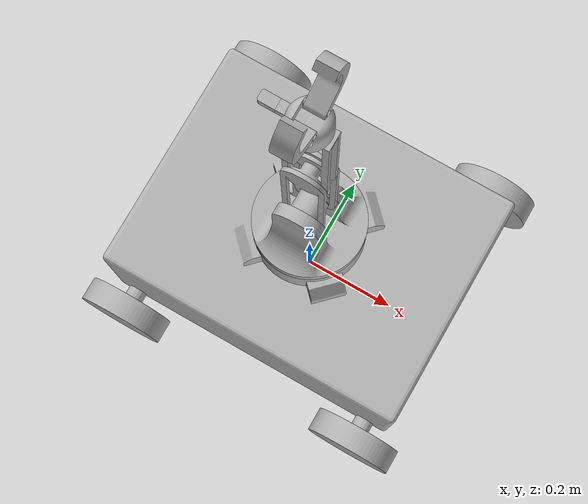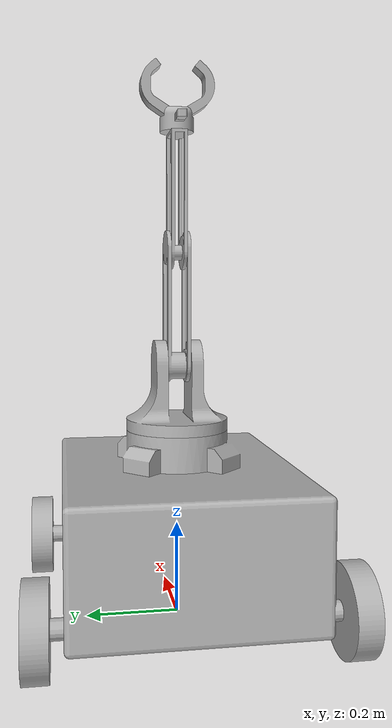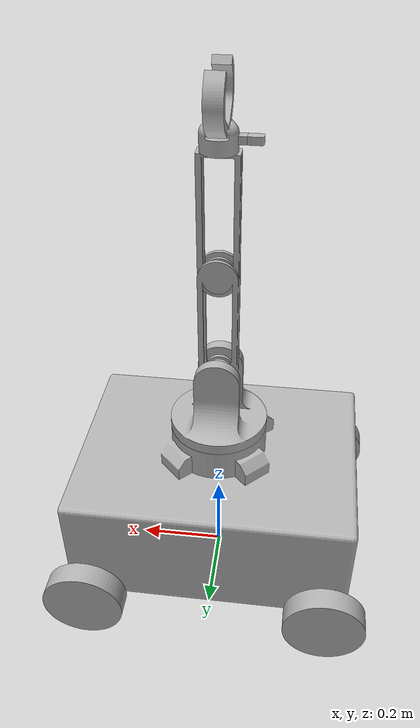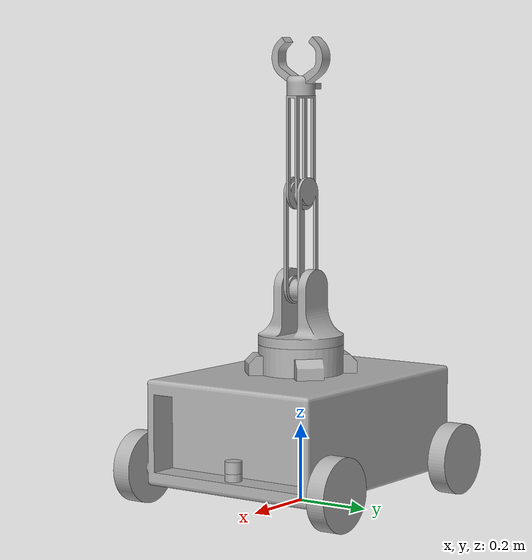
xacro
<?xml version="1.0" ?>
<robot name="visical" xmlns:xacro="http://www.ros.org/wiki/xacro">

<xacro:include filename="$(find visical_description)/urdf/materials.xacro" />
<xacro:include filename="$(find visical_description)/urdf/visical.trans" />
<xacro:include filename="$(find visical_description)/urdf/visical.gazebo" />
<link name="base_link">
  <inertial>
    <origin xyz="-0.02277255286612654 -1.0929189061035456e-16 0.20640782949766417" rpy="0 0 0"/>
    <mass value="90.32709779099359"/>
    <inertia ixx="2.506687" iyy="3.358099" izz="4.557173" ixy="-0.0" iyz="-0.0" ixz="-0.012339"/>
  </inertial>
  <visual>
    <origin xyz="0 0 0" rpy="0 0 0"/>
    <geometry>
      <mesh filename="package://visical_description/meshes/base_link.stl" scale="0.001 0.001 0.001"/>
    </geometry>
    <material name="silver"/>
  </visual>
  <collision>
    <origin xyz="0 0 0" rpy="0 0 0"/>
    <geometry>
      <mesh filename="package://visical_description/meshes/base_link.stl" scale="0.001 0.001 0.001"/>
    </geometry>
  </collision>
</link>

<link name="right_back_wheel_1">
  <inertial>
    <origin xyz="1.1102230246251565e-16 0.024999999999999967 1.3877787807814457e-17" rpy="0 0 0"/>
    <mass value="1.2499317246159112"/>
    <inertia ixx="0.002934" iyy="0.005347" izz="0.002934" ixy="0.0" iyz="-0.0" ixz="0.0"/>
  </inertial>
  <visual>
    <origin xyz="0.275 -0.275 -0.1" rpy="0 0 0"/>
    <geometry>
      <mesh filename="package://visical_description/meshes/right_back_wheel_1.stl" scale="0.001 0.001 0.001"/>
    </geometry>
    <material name="silver"/>
  </visual>
  <collision>
    <origin xyz="0.275 -0.275 -0.1" rpy="0 0 0"/>
    <geometry>
      <mesh filename="package://visical_description/meshes/right_back_wheel_1.stl" scale="0.001 0.001 0.001"/>
    </geometry>
  </collision>
</link>

<link name="right_front_wheel_1">
  <inertial>
    <origin xyz="0.0 0.024999999999999967 1.3877787807814457e-17" rpy="0 0 0"/>
    <mass value="1.2499317246159112"/>
    <inertia ixx="0.002934" iyy="0.005347" izz="0.002934" ixy="0.0" iyz="-0.0" ixz="0.0"/>
  </inertial>
  <visual>
    <origin xyz="-0.275 -0.275 -0.1" rpy="0 0 0"/>
    <geometry>
      <mesh filename="package://visical_description/meshes/right_front_wheel_1.stl" scale="0.001 0.001 0.001"/>
    </geometry>
    <material name="silver"/>
  </visual>
  <collision>
    <origin xyz="-0.275 -0.275 -0.1" rpy="0 0 0"/>
    <geometry>
      <mesh filename="package://visical_description/meshes/right_front_wheel_1.stl" scale="0.001 0.001 0.001"/>
    </geometry>
  </collision>
</link>

<link name="left_front_wheel_1">
  <inertial>
    <origin xyz="0.0 -0.024999999999999967 1.3877787807814457e-17" rpy="0 0 0"/>
    <mass value="1.2499317246159112"/>
    <inertia ixx="0.002934" iyy="0.005347" izz="0.002934" ixy="0.0" iyz="0.0" ixz="0.0"/>
  </inertial>
  <visual>
    <origin xyz="-0.275 0.275 -0.1" rpy="0 0 0"/>
    <geometry>
      <mesh filename="package://visical_description/meshes/left_front_wheel_1.stl" scale="0.001 0.001 0.001"/>
    </geometry>
    <material name="silver"/>
  </visual>
  <collision>
    <origin xyz="-0.275 0.275 -0.1" rpy="0 0 0"/>
    <geometry>
      <mesh filename="package://visical_description/meshes/left_front_wheel_1.stl" scale="0.001 0.001 0.001"/>
    </geometry>
  </collision>
</link>

<link name="left_back_wheel_1">
  <inertial>
    <origin xyz="1.1102230246251565e-16 -0.024999999999999967 1.3877787807814457e-17" rpy="0 0 0"/>
    <mass value="1.2499317246159112"/>
    <inertia ixx="0.002934" iyy="0.005347" izz="0.002934" ixy="-0.0" iyz="0.0" ixz="0.0"/>
  </inertial>
  <visual>
    <origin xyz="0.275 0.275 -0.1" rpy="0 0 0"/>
    <geometry>
      <mesh filename="package://visical_description/meshes/left_back_wheel_1.stl" scale="0.001 0.001 0.001"/>
    </geometry>
    <material name="silver"/>
  </visual>
  <collision>
    <origin xyz="0.275 0.275 -0.1" rpy="0 0 0"/>
    <geometry>
      <mesh filename="package://visical_description/meshes/left_back_wheel_1.stl" scale="0.001 0.001 0.001"/>
    </geometry>
  </collision>
</link>

<link name="base_1">
  <inertial>
    <origin xyz="-3.6439649877433185e-17 -1.8219824938716593e-17 0.052780065045489155" rpy="0 0 0"/>
    <mass value="2.1165173367405865"/>
    <inertia ixx="0.011329" iyy="0.009953" izz="0.009435" ixy="-0.0" iyz="0.0" ixz="-0.0"/>
  </inertial>
  <visual>
    <origin xyz="-0.0 -0.0 -0.410852" rpy="0 0 0"/>
    <geometry>
      <mesh filename="package://visical_description/meshes/base_1.stl" scale="0.001 0.001 0.001"/>
    </geometry>
    <material name="silver"/>
  </visual>
  <collision>
    <origin xyz="-0.0 -0.0 -0.410852" rpy="0 0 0"/>
    <geometry>
      <mesh filename="package://visical_description/meshes/base_1.stl" scale="0.001 0.001 0.001"/>
    </geometry>
  </collision>
</link>

<link name="link1_1">
  <inertial>
    <origin xyz="-7.37640590820292e-18 0.024999999999999977 0.08498061477135577" rpy="0 0 0"/>
    <mass value="0.36619449876825966"/>
    <inertia ixx="0.004564" iyy="0.004647" izz="0.000334" ixy="-0.0" iyz="-0.0" ixz="-0.0"/>
  </inertial>
  <visual>
    <origin xyz="-0.0 0.025 -0.555852" rpy="0 0 0"/>
    <geometry>
      <mesh filename="package://visical_description/meshes/link1_1.stl" scale="0.001 0.001 0.001"/>
    </geometry>
    <material name="silver"/>
  </visual>
  <collision>
    <origin xyz="-0.0 0.025 -0.555852" rpy="0 0 0"/>
    <geometry>
      <mesh filename="package://visical_description/meshes/link1_1.stl" scale="0.001 0.001 0.001"/>
    </geometry>
  </collision>
</link>

<link name="link2_1">
  <inertial>
    <origin xyz="0.0003643148545016393 -0.01699999999999998 0.07936820597020022" rpy="0 0 0"/>
    <mass value="0.1998761442345815"/>
    <inertia ixx="0.001931" iyy="0.002052" izz="0.000186" ixy="0.0" iyz="0.0" ixz="-4e-06"/>
  </inertial>
  <visual>
    <origin xyz="-0.0 -0.017 -0.8" rpy="0 0 0"/>
    <geometry>
      <mesh filename="package://visical_description/meshes/link2_1.stl" scale="0.001 0.001 0.001"/>
    </geometry>
    <material name="silver"/>
  </visual>
  <collision>
    <origin xyz="-0.0 -0.017 -0.8" rpy="0 0 0"/>
    <geometry>
      <mesh filename="package://visical_description/meshes/link2_1.stl" scale="0.001 0.001 0.001"/>
    </geometry>
  </collision>
</link>

<link name="gripper_1">
  <inertial>
    <origin xyz="-0.0012971432236860213 1.2123259446010175e-14 0.018403623130143876" rpy="0 0 0"/>
    <mass value="0.17516176803981937"/>
    <inertia ixx="7.5e-05" iyy="9.6e-05" izz="0.000126" ixy="-0.0" iyz="-0.0" ixz="1e-06"/>
  </inertial>
  <visual>
    <origin xyz="-0.000208 -0.0 -1.05" rpy="0 0 0"/>
    <geometry>
      <mesh filename="package://visical_description/meshes/gripper_1.stl" scale="0.001 0.001 0.001"/>
    </geometry>
    <material name="silver"/>
  </visual>
  <collision>
    <origin xyz="-0.000208 -0.0 -1.05" rpy="0 0 0"/>
    <geometry>
      <mesh filename="package://visical_description/meshes/gripper_1.stl" scale="0.001 0.001 0.001"/>
    </geometry>
  </collision>
</link>

<link name="finger2_1">
  <inertial>
    <origin xyz="-0.01767527557261027 0.03200232931309939 0.04349468476763785" rpy="0 0 0"/>
    <mass value="0.11161734286513819"/>
    <inertia ixx="0.000154" iyy="0.000133" izz="4.4e-05" ixy="-0.0" iyz="-3.6e-05" ixz="0.0"/>
  </inertial>
  <visual>
    <origin xyz="-0.017884 -0.02 -1.09" rpy="0 0 0"/>
    <geometry>
      <mesh filename="package://visical_description/meshes/finger2_1.stl" scale="0.001 0.001 0.001"/>
    </geometry>
    <material name="silver"/>
  </visual>
  <collision>
    <origin xyz="-0.017884 -0.02 -1.09" rpy="0 0 0"/>
    <geometry>
      <mesh filename="package://visical_description/meshes/finger2_1.stl" scale="0.001 0.001 0.001"/>
    </geometry>
  </collision>
</link>

<link name="finger1_1">
  <inertial>
    <origin xyz="0.017674637728264903 -0.032002329313099334 0.043494684767637626" rpy="0 0 0"/>
    <mass value="0.11161734286513794"/>
    <inertia ixx="0.000154" iyy="0.000133" izz="4.4e-05" ixy="-0.0" iyz="3.6e-05" ixz="-0.0"/>
  </inertial>
  <visual>
    <origin xyz="0.017469 0.02 -1.09" rpy="0 0 0"/>
    <geometry>
      <mesh filename="package://visical_description/meshes/finger1_1.stl" scale="0.001 0.001 0.001"/>
    </geometry>
    <material name="silver"/>
  </visual>
  <collision>
    <origin xyz="0.017469 0.02 -1.09" rpy="0 0 0"/>
    <geometry>
      <mesh filename="package://visical_description/meshes/finger1_1.stl" scale="0.001 0.001 0.001"/>
    </geometry>
  </collision>
</link>

<link name="camera_1">
  <inertial>
    <origin xyz="-0.014828193277845493 2.220446049250313e-18 -3.4973144535932477e-07" rpy="0 0 0"/>
    <mass value="0.05096935351244579"/>
    <inertia ixx="2e-06" iyy="5e-06" izz="5e-06" ixy="0.0" iyz="0.0" ixz="-0.0"/>
  </inertial>
  <visual>
    <origin xyz="0.050904 -0.0 -1.073345" rpy="0 0 0"/>
    <geometry>
      <mesh filename="package://visical_description/meshes/camera_1.stl" scale="0.001 0.001 0.001"/>
    </geometry>
    <material name="silver"/>
  </visual>
  <collision>
    <origin xyz="0.050904 -0.0 -1.073345" rpy="0 0 0"/>
    <geometry>
      <mesh filename="package://visical_description/meshes/camera_1.stl" scale="0.001 0.001 0.001"/>
    </geometry>
  </collision>
</link>

<link name="camera_link_optical"></link>

<joint name="camera_optical_joint" type="fixed">
  <origin xyz="-0.013 0 0.0075" rpy="0 ${-pi/2} 0"/>
  <parent link="camera_1"/>
  <child link="camera_link_optical"/>
</joint>

<link name="lidar_1">
  <inertial>
    <origin xyz="0.0 -3.115327511687561e-18 0.015000000000000013" rpy="0 0 0"/>
    <mass value="0.274607870487345"/>
    <inertia ixx="5.4e-05" iyy="5.4e-05" izz="6.6e-05" ixy="-0.0" iyz="0.0" ixz="-0.0"/>
  </inertial>
  <visual>
    <origin xyz="-0.29 -0.0 -0.12" rpy="0 0 0"/>
    <geometry>
      <mesh filename="package://visical_description/meshes/lidar_1.stl" scale="0.001 0.001 0.001"/>
    </geometry>
    <material name="silver"/>
  </visual>
  <collision>
    <origin xyz="-0.29 -0.0 -0.12" rpy="0 0 0"/>
    <geometry>
      <mesh filename="package://visical_description/meshes/lidar_1.stl" scale="0.001 0.001 0.001"/>
    </geometry>
  </collision>
</link>

<joint name="Rev1" type="continuous">
  <origin xyz="-0.275 0.275 0.1" rpy="0 0 0"/>
  <parent link="base_link"/>
  <child link="right_back_wheel_1"/>
  <axis xyz="0.0 1.0 0.0"/>
</joint>

<joint name="Rev2" type="continuous">
  <origin xyz="0.275 0.275 0.1" rpy="0 0 0"/>
  <parent link="base_link"/>
  <child link="right_front_wheel_1"/>
  <axis xyz="0.0 1.0 0.0"/>
</joint>

<joint name="Rev3" type="continuous">
  <origin xyz="0.275 -0.275 0.1" rpy="0 0 0"/>
  <parent link="base_link"/>
  <child link="left_front_wheel_1"/>
  <axis xyz="0.0 1.0 0.0"/>
</joint>

<joint name="Rev4" type="continuous">
  <origin xyz="-0.275 -0.275 0.1" rpy="0 0 0"/>
  <parent link="base_link"/>
  <child link="left_back_wheel_1"/>
  <axis xyz="0.0 1.0 0.0"/>
</joint>

<joint name="Rev5" type="continuous">
  <origin xyz="0.0 0.0 0.410852" rpy="0 0 0"/>
  <parent link="base_link"/>
  <child link="base_1"/>
  <axis xyz="0.0 0.0 1.0"/>
</joint>

<joint name="Rev6" type="continuous">
  <origin xyz="0.0 -0.025 0.145" rpy="0 0 0"/>
  <parent link="base_1"/>
  <child link="link1_1"/>
  <axis xyz="0.0 1.0 0.0"/>
</joint>

<joint name="Rev7" type="continuous">
  <origin xyz="0.0 0.042 0.244148" rpy="0 0 0"/>
  <parent link="link1_1"/>
  <child link="link2_1"/>
  <axis xyz="0.0 -1.0 0.0"/>
</joint>

<joint name="Rev8" type="continuous">
  <origin xyz="0.000208 -0.017 0.25" rpy="0 0 0"/>
  <parent link="link2_1"/>
  <child link="gripper_1"/>
  <axis xyz="0.0 0.0 1.0"/>
</joint>

<joint name="Rev9" type="continuous">
  <origin xyz="0.017676 0.02 0.04" rpy="0 0 0"/>
  <parent link="gripper_1"/>
  <child link="finger2_1"/>
  <axis xyz="-1.0 0.0 0.0"/>
</joint>

<joint name="Rev10" type="continuous">
  <origin xyz="-0.017677 -0.02 0.04" rpy="0 0 0"/>
  <parent link="gripper_1"/>
  <child link="finger1_1"/>
  <axis xyz="1.0 -0.0 0.0"/>
</joint>

<joint name="Rigid11" type="fixed">
  <origin xyz="-0.051112 0.0 0.023345" rpy="0 0 0"/>
  <parent link="gripper_1"/>
  <child link="camera_1"/>
</joint>

<joint name="Rigid12" type="fixed">
  <origin xyz="0.29 0.0 0.12" rpy="0 0 0"/>
  <parent link="base_link"/>
  <child link="lidar_1"/>
</joint>

<gazebo>
 <plugin filename="libgazebo_ros_control.so" name="gazebo_ros_control">
      <robotNamespace>/visical</robotNamespace>
    </plugin>
</gazebo>

</robot>

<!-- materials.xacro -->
<robot name="visical" xmlns:xacro="http://www.ros.org/wiki/xacro" >

<material name="silver">
  <color rgba="0.700 0.700 0.700 1.000"/>
</material>
<material name="Black">
 <color rgba="0.0 0.0 0.0 1.0"/>
</material>
<material name="White">
 <color rgba="1.0 1.0 1.0 1.0"/>
</material>
<material name="Blue">
 <color rgba="0.0 0.0 1.0 1.0"/>
</material>
<material name="Green">
 <color rgba="0.0 1.0 0.0 1.0"/>
</material>

</robot>
